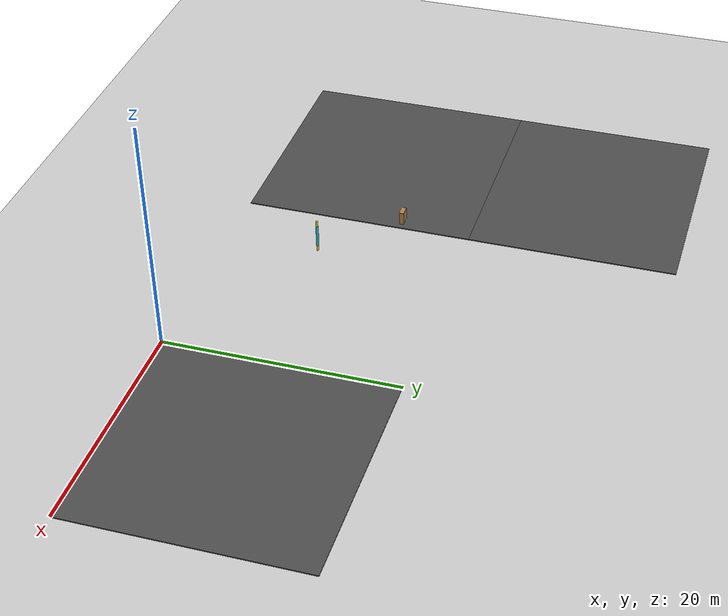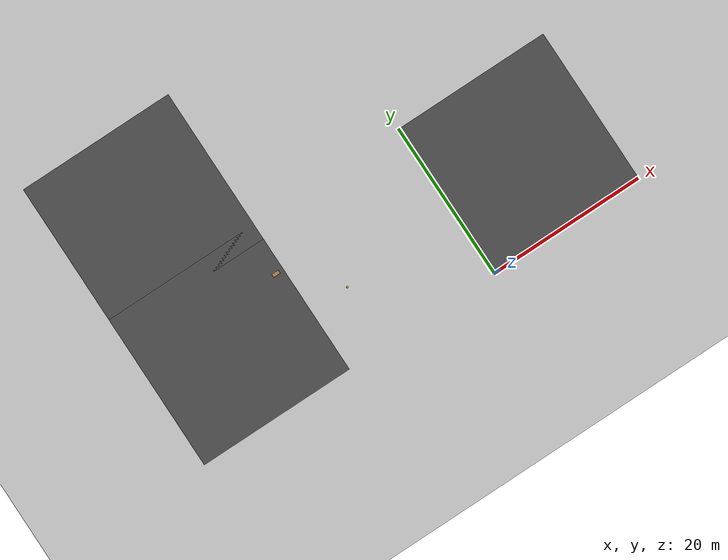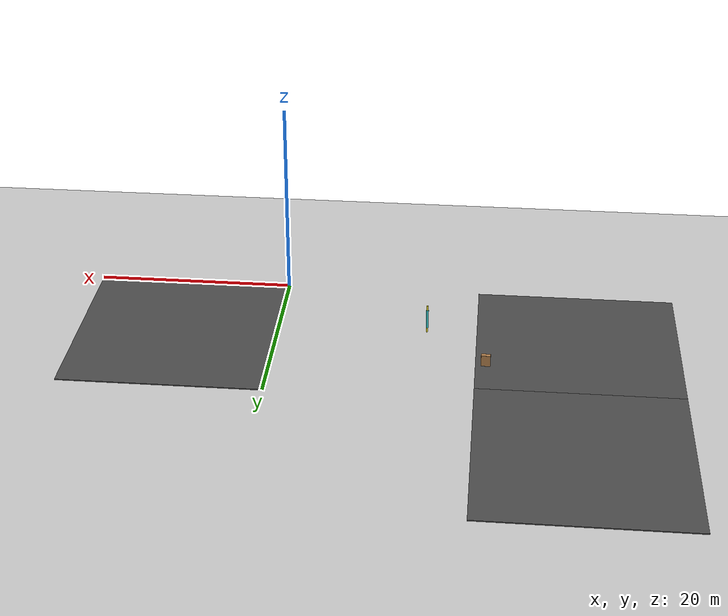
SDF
<sdf version="1.4">
 <world name="default">
  <model name="ground_plane">
   <static>1</static>
   <link name="link">
    <collision name="collision">
     <geometry><plane><normal>0 0 1</normal><size>100 100</size></plane></geometry>
     <surface><friction><ode><mu>100</mu><mu2>50</mu2></ode></friction></surface>
    </collision>
    <visual name="visual">
     <cast_shadows>0</cast_shadows>
     <geometry><plane><normal>0 0 1</normal><size>100 100</size></plane></geometry>
     <material>
      <script><uri>file://media/materials/scripts/gazebo.material</uri><name>Gazebo/Grey</name></script>
     </material>
    </visual>
    <velocity_decay><linear>0</linear><angular>0</angular></velocity_decay>
   </link>
  </model>
  <model name="mikey_goal3">
   <pose>-15 8 1.5 0 -0 0</pose>
   <link name="link">
    <inertial>
     <mass>1000</mass>
     <inertia><ixx>1000</ixx><ixy>0</ixy><ixz>0</ixz><iyy>1000</iyy><iyz>0</iyz><izz>1000</izz></inertia>
    </inertial>
    <visual name="visual">
     <geometry><cylinder><radius>0.1</radius><length>3</length></cylinder></geometry>
     <material>
      <script><uri>file://media/materials/scripts/gazebo.material</uri><name>Gazebo/Yellow</name></script>
     </material>
    </visual>
    <velocity_decay><linear>0</linear><angular>0</angular></velocity_decay>
   </link>
   <static>1</static>
  </model>
  <model name="shredder_goal3">
   <pose>-15 8 1.5 0 -0 0</pose>
   <link name="link">
    <inertial>
     <mass>1000</mass>
     <inertia><ixx>1000</ixx><ixy>0</ixy><ixz>0</ixz><iyy>1000</iyy><iyz>0</iyz><izz>1000</izz></inertia>
    </inertial>
    <visual name="visual">
     <geometry><cylinder><radius>0.12</radius><length>2</length></cylinder></geometry>
     <material>
      <script><uri>file://media/materials/scripts/gazebo.material</uri><name>Gazebo/Turquoise</name></script>
     </material>
    </visual>
    <velocity_decay><linear>0</linear><angular>0</angular></velocity_decay>
   </link>
   <static>1</static>
  </model>
  <model name="asphalt_plane">
   <static>1</static>
   <link name="link">
    <collision name="collision"><geometry><box><size>20 20 0.1</size></box></geometry></collision>
    <visual name="visual">
     <cast_shadows>0</cast_shadows>
     <geometry><box><size>20 20 0.1</size></box></geometry>
     <material>
      <script>
       <uri>model://asphalt_plane/materials/scripts</uri>
       <uri>model://asphalt_plane/materials/textures</uri>
       <name>vrc/asphalt</name>
      </script>
     </material>
    </visual>
    <velocity_decay><linear>0</linear><angular>0</angular></velocity_decay>
   </link>
   <pose>10 10 0 0 -0 0</pose>
  </model>
  <model name="asphalt_plane_3">
   <static>1</static>
   <link name="link">
    <collision name="collision"><geometry><box><size>20 20 0.1</size></box></geometry></collision>
    <visual name="visual">
     <cast_shadows>0</cast_shadows>
     <geometry><box><size>20 20 0.1</size></box></geometry>
     <material>
      <script>
       <uri>model://asphalt_plane/materials/scripts</uri>
       <uri>model://asphalt_plane/materials/textures</uri>
       <name>vrc/asphalt</name>
      </script>
     </material>
    </visual>
    <velocity_decay><linear>0</linear><angular>0</angular></velocity_decay>
   </link>
   <pose>-30 10 0 0 -0 0</pose>
  </model>
  <model name="asphalt_plane_14">
   <static>1</static>
   <link name="link">
    <collision name="collision"><geometry><box><size>20 20 0.1</size></box></geometry></collision>
    <visual name="visual">
     <cast_shadows>0</cast_shadows>
     <geometry><box><size>20 20 0.1</size></box></geometry>
     <material>
      <script>
       <uri>model://asphalt_plane/materials/scripts</uri>
       <uri>model://asphalt_plane/materials/textures</uri>
       <name>vrc/asphalt</name>
      </script>
     </material>
    </visual>
    <velocity_decay><linear>0</linear><angular>0</angular></velocity_decay>
   </link>
   <pose>-30 28 0 0 -0 0</pose>
  </model>
  <model name="bookshelf">
   <static>1</static>
   <link name="link">
    <inertial><mass>1</mass></inertial>
    <collision name="back">
     <pose>0 0.005 0.6 0 -0 0</pose>
     <geometry><box><size>0.9 0.01 1.2</size></box></geometry>
    </collision>
    <visual name="visual1">
     <pose>0 0.005 0.6 0 -0 0</pose>
     <geometry><box><size>0.9 0.01 1.2</size></box></geometry>
     <material>
      <script><uri>file://media/materials/scripts/gazebo.material</uri><name>Gazebo/Wood</name></script>
     </material>
    </visual>
    <collision name="left_side">
     <pose>0.45 -0.195 0.6 0 -0 0</pose>
     <geometry><box><size>0.02 0.4 1.2</size></box></geometry>
    </collision>
    <visual name="visual2">
     <pose>0.45 -0.195 0.6 0 -0 0</pose>
     <geometry><box><size>0.02 0.4 1.2</size></box></geometry>
     <material>
      <script><uri>file://media/materials/scripts/gazebo.material</uri><name>Gazebo/Wood</name></script>
     </material>
    </visual>
    <collision name="right_side">
     <pose>-0.45 -0.195 0.6 0 -0 0</pose>
     <geometry><box><size>0.02 0.4 1.2</size></box></geometry>
    </collision>
    <visual name="visual3">
     <pose>-0.45 -0.195 0.6 0 -0 0</pose>
     <geometry><box><size>0.02 0.4 1.2</size></box></geometry>
     <material>
      <script><uri>file://media/materials/scripts/gazebo.material</uri><name>Gazebo/Wood</name></script>
     </material>
    </visual>
    <collision name="bottom">
     <pose>0 -0.195 0.03 0 -0 0</pose>
     <geometry><box><size>0.88 0.4 0.06</size></box></geometry>
    </collision>
    <visual name="visual4">
     <pose>0 -0.195 0.03 0 -0 0</pose>
     <geometry><box><size>0.88 0.4 0.06</size></box></geometry>
     <material>
      <script><uri>file://media/materials/scripts/gazebo.material</uri><name>Gazebo/Wood</name></script>
     </material>
    </visual>
    <collision name="top">
     <pose>0 -0.195 1.19 0 -0 0</pose>
     <geometry><box><size>0.88 0.4 0.02</size></box></geometry>
    </collision>
    <visual name="visual5">
     <pose>0 -0.195 1.19 0 -0 0</pose>
     <geometry><box><size>0.88 0.4 0.02</size></box></geometry>
     <material>
      <script><uri>file://media/materials/scripts/gazebo.material</uri><name>Gazebo/Wood</name></script>
     </material>
    </visual>
    <collision name="low_shelf">
     <pose>0 -0.195 0.43 0 -0 0</pose>
     <geometry><box><size>0.88 0.4 0.02</size></box></geometry>
    </collision>
    <visual name="visual6">
     <pose>0 -0.195 0.43 0 -0 0</pose>
     <geometry><box><size>0.88 0.4 0.02</size></box></geometry>
     <material>
      <script><uri>file://media/materials/scripts/gazebo.material</uri><name>Gazebo/Wood</name></script>
     </material>
    </visual>
    <collision name="high_shelf">
     <pose>0 -0.195 0.8 0 -0 0</pose>
     <geometry><box><size>0.88 0.4 0.02</size></box></geometry>
    </collision>
    <visual name="visual7">
     <pose>0 -0.195 0.8 0 -0 0</pose>
     <geometry><box><size>0.88 0.4 0.02</size></box></geometry>
     <material>
      <script><uri>file://media/materials/scripts/gazebo.material</uri><name>Gazebo/Wood</name></script>
     </material>
    </visual>
    <velocity_decay><linear>0</linear><angular>0</angular></velocity_decay>
   </link>
   <pose>-21 14 0 0 -0 0</pose>
  </model>
 </world>
</sdf>
